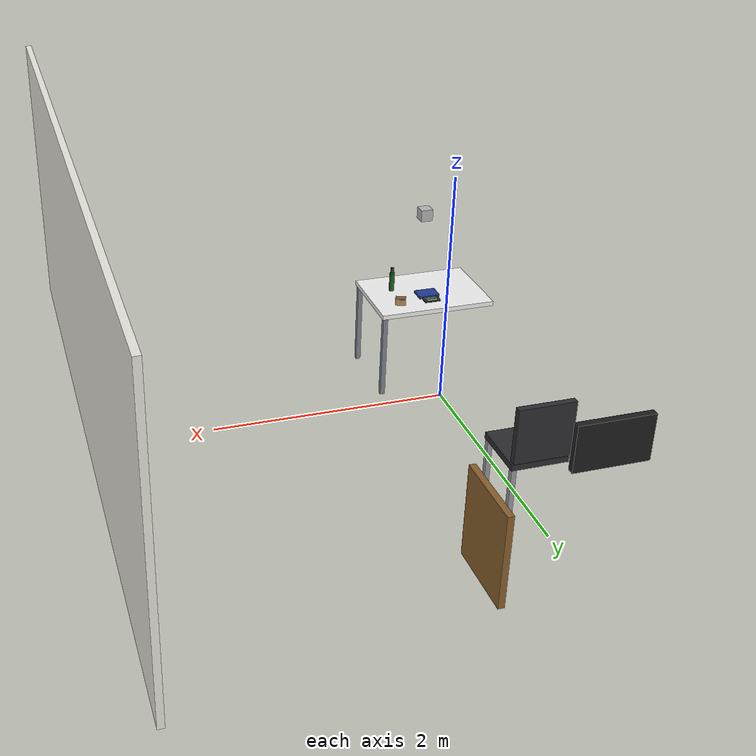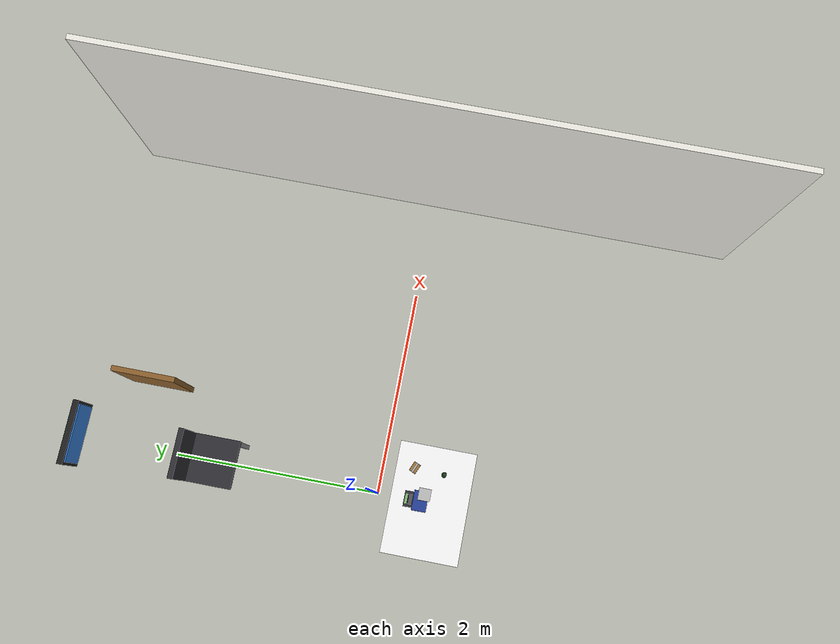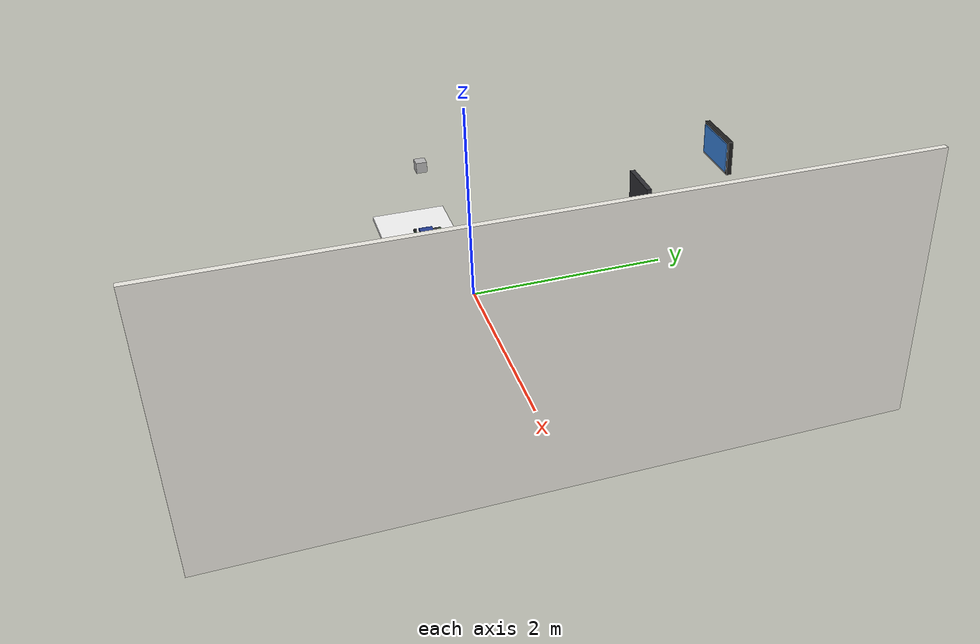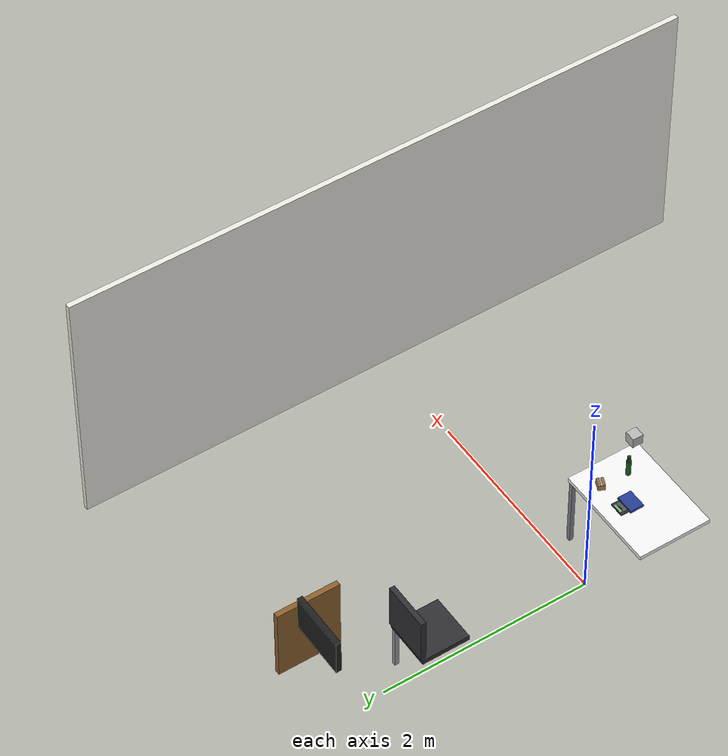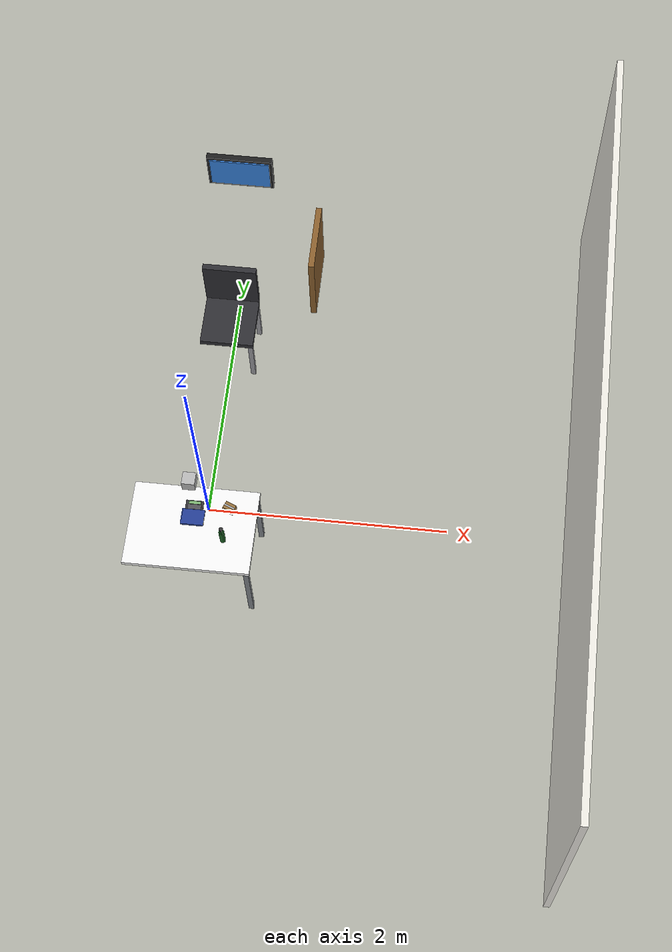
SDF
<sdf version="1.10">
 <world name="bps_room">
  <model name="wall_east">
   <static>true</static>
   <pose>3 0 1.25 0 0 0</pose>
   <link name="link">
    <collision name="collision">
     <geometry><box><size>0.050000000000000003 6 2.5</size></box></geometry>
    </collision>
    <visual name="visual">
     <geometry><box><size>0.050000000000000003 6 2.5</size></box></geometry>
     <material>
      <ambient>0.930000007 0.920000017 0.889999986 1</ambient>
      <diffuse>0.930000007 0.920000017 0.889999986 1</diffuse>
     </material>
    </visual>
    <inertial>
     <mass>1</mass>
     <inertia><ixx>1</ixx><ixy>0</ixy><ixz>0</ixz><iyy>1</iyy><iyz>0</iyz><izz>1</izz></inertia>
    </inertial>
   </link>
  </model>
  <model name="desk_leg_right">
   <static>true</static>
   <pose>0.65000000000000002 2.2999999999999998 0.375 0 0 0</pose>
   <link name="link">
    <collision name="collision">
     <geometry><box><size>0.050000000000000003 0.59999999999999998 0.75</size></box></geometry>
    </collision>
    <visual name="visual">
     <geometry><box><size>0.050000000000000003 0.59999999999999998 0.75</size></box></geometry>
     <material>
      <ambient>0.550000012 0.379999995 0.180000007 1</ambient>
      <diffuse>0.550000012 0.379999995 0.180000007 1</diffuse>
     </material>
    </visual>
    <inertial>
     <mass>1</mass>
     <inertia><ixx>1</ixx><ixy>0</ixy><ixz>0</ixz><iyy>1</iyy><iyz>0</iyz><izz>1</izz></inertia>
    </inertial>
   </link>
  </model>
  <model name="monitor_screen">
   <static>true</static>
   <pose>0 2.6000000000000001 1.2 0 0 0</pose>
   <link name="link">
    <collision name="collision">
     <geometry><box><size>0.55000000000000004 0.050000000000000003 0.34999999999999998</size></box></geometry>
    </collision>
    <visual name="visual">
     <geometry><box><size>0.55000000000000004 0.050000000000000003 0.34999999999999998</size></box></geometry>
     <material>
      <ambient>0.119999997 0.119999997 0.119999997 1</ambient>
      <diffuse>0.119999997 0.119999997 0.119999997 1</diffuse>
     </material>
    </visual>
    <inertial>
     <mass>1</mass>
     <inertia><ixx>1</ixx><ixy>0</ixy><ixz>0</ixz><iyy>1</iyy><iyz>0</iyz><izz>1</izz></inertia>
    </inertial>
   </link>
  </model>
  <model name="monitor_face">
   <static>true</static>
   <pose>0 2.5699999999999998 1.2 0 0 0</pose>
   <link name="link">
    <visual name="visual">
     <geometry><box><size>0.5 0.01 0.29999999999999999</size></box></geometry>
     <material>
      <ambient>0.219999999 0.519999981 0.879999995 1</ambient>
      <diffuse>0.219999999 0.519999981 0.879999995 1</diffuse>
      <emissive>0.100000001 0.25 0.449999988 1</emissive>
     </material>
    </visual>
    <inertial>
     <mass>1</mass>
     <inertia><ixx>1</ixx><ixy>0</ixy><ixz>0</ixz><iyy>1</iyy><iyz>0</iyz><izz>1</izz></inertia>
    </inertial>
   </link>
  </model>
  <model name="chair_seat">
   <static>true</static>
   <pose>0 1.55 0.47999999999999998 0 0 0</pose>
   <link name="link">
    <collision name="collision">
     <geometry><box><size>0.45000000000000001 0.45000000000000001 0.050000000000000003</size></box></geometry>
    </collision>
    <visual name="visual">
     <geometry><box><size>0.45000000000000001 0.45000000000000001 0.050000000000000003</size></box></geometry>
     <material>
      <ambient>0.180000007 0.180000007 0.200000003 1</ambient>
      <diffuse>0.180000007 0.180000007 0.200000003 1</diffuse>
     </material>
    </visual>
    <inertial>
     <mass>1</mass>
     <inertia><ixx>1</ixx><ixy>0</ixy><ixz>0</ixz><iyy>1</iyy><iyz>0</iyz><izz>1</izz></inertia>
    </inertial>
   </link>
  </model>
  <model name="chair_back">
   <static>true</static>
   <pose>0 1.77 0.75 0 0 0</pose>
   <link name="link">
    <collision name="collision">
     <geometry><box><size>0.45000000000000001 0.050000000000000003 0.45000000000000001</size></box></geometry>
    </collision>
    <visual name="visual">
     <geometry><box><size>0.45000000000000001 0.050000000000000003 0.45000000000000001</size></box></geometry>
     <material>
      <ambient>0.180000007 0.180000007 0.200000003 1</ambient>
      <diffuse>0.180000007 0.180000007 0.200000003 1</diffuse>
     </material>
    </visual>
    <inertial>
     <mass>1</mass>
     <inertia><ixx>1</ixx><ixy>0</ixy><ixz>0</ixz><iyy>1</iyy><iyz>0</iyz><izz>1</izz></inertia>
    </inertial>
   </link>
  </model>
  <model name="chair_leg_fr">
   <static>true</static>
   <pose>0.20000000000000001 1.3500000000000001 0.23999999999999999 0 0 0</pose>
   <link name="link">
    <collision name="collision">
     <geometry><box><size>0.040000000000000001 0.040000000000000001 0.47999999999999998</size></box></geometry>
    </collision>
    <visual name="visual">
     <geometry><box><size>0.040000000000000001 0.040000000000000001 0.47999999999999998</size></box></geometry>
     <material>
      <ambient>0.600000024 0.600000024 0.620000005 1</ambient>
      <diffuse>0.600000024 0.600000024 0.620000005 1</diffuse>
     </material>
    </visual>
    <inertial>
     <mass>1</mass>
     <inertia><ixx>1</ixx><ixy>0</ixy><ixz>0</ixz><iyy>1</iyy><iyz>0</iyz><izz>1</izz></inertia>
    </inertial>
   </link>
  </model>
  <model name="chair_leg_br">
   <static>true</static>
   <pose>0.20000000000000001 1.75 0.23999999999999999 0 0 0</pose>
   <link name="link">
    <collision name="collision">
     <geometry><box><size>0.040000000000000001 0.040000000000000001 0.47999999999999998</size></box></geometry>
    </collision>
    <visual name="visual">
     <geometry><box><size>0.040000000000000001 0.040000000000000001 0.47999999999999998</size></box></geometry>
     <material>
      <ambient>0.600000024 0.600000024 0.620000005 1</ambient>
      <diffuse>0.600000024 0.600000024 0.620000005 1</diffuse>
     </material>
    </visual>
    <inertial>
     <mass>1</mass>
     <inertia><ixx>1</ixx><ixy>0</ixy><ixz>0</ixz><iyy>1</iyy><iyz>0</iyz><izz>1</izz></inertia>
    </inertial>
   </link>
  </model>
  <model name="experiment_table">
   <static>true</static>
   <pose>0 -0.5 0.75 0 0 0</pose>
   <link name="link">
    <collision name="collision">
     <geometry><box><size>1 0.69999999999999996 0.040000000000000001</size></box></geometry>
    </collision>
    <visual name="visual">
     <geometry><box><size>1 0.69999999999999996 0.040000000000000001</size></box></geometry>
     <material>
      <ambient>0.959999979 0.959999979 0.959999979 1</ambient>
      <diffuse>0.959999979 0.959999979 0.959999979 1</diffuse>
     </material>
    </visual>
    <inertial>
     <mass>1</mass>
     <inertia><ixx>1</ixx><ixy>0</ixy><ixz>0</ixz><iyy>1</iyy><iyz>0</iyz><izz>1</izz></inertia>
    </inertial>
   </link>
  </model>
  <model name="table_leg_fr">
   <static>true</static>
   <pose>0.46999999999999997 -0.81999999999999995 0.375 0 0 0</pose>
   <link name="link">
    <collision name="collision">
     <geometry><box><size>0.040000000000000001 0.040000000000000001 0.75</size></box></geometry>
    </collision>
    <visual name="visual">
     <geometry><box><size>0.040000000000000001 0.040000000000000001 0.75</size></box></geometry>
     <material>
      <ambient>0.5 0.519999981 0.540000021 1</ambient>
      <diffuse>0.5 0.519999981 0.540000021 1</diffuse>
     </material>
    </visual>
    <inertial>
     <mass>1</mass>
     <inertia><ixx>1</ixx><ixy>0</ixy><ixz>0</ixz><iyy>1</iyy><iyz>0</iyz><izz>1</izz></inertia>
    </inertial>
   </link>
  </model>
  <model name="table_leg_br">
   <static>true</static>
   <pose>0.46999999999999997 -0.17999999999999999 0.375 0 0 0</pose>
   <link name="link">
    <collision name="collision">
     <geometry><box><size>0.040000000000000001 0.040000000000000001 0.75</size></box></geometry>
    </collision>
    <visual name="visual">
     <geometry><box><size>0.040000000000000001 0.040000000000000001 0.75</size></box></geometry>
     <material>
      <ambient>0.5 0.519999981 0.540000021 1</ambient>
      <diffuse>0.5 0.519999981 0.540000021 1</diffuse>
     </material>
    </visual>
    <inertial>
     <mass>1</mass>
     <inertia><ixx>1</ixx><ixy>0</ixy><ixz>0</ixz><iyy>1</iyy><iyz>0</iyz><izz>1</izz></inertia>
    </inertial>
   </link>
  </model>
  <model name="depth_camera">
   <static>true</static>
   <pose>4.163336342344337e-17 -0.5 1.5700000000000001 3.1415926535897931 1.5707926536057681 3.1415926535897931</pose>
   <link name="link">
    <pose>0.050000000000000003 0.050000000000000003 0.050000000000000003 0 0 0</pose>
    <inertial>
     <mass>0.10000000000000001</mass>
     <inertia>
      <ixx>0.00016666700000000001</ixx>
      <iyy>0.00016666700000000001</iyy>
      <izz>0.00016666700000000001</izz>
      <ixy>0</ixy>
      <ixz>0</ixz>
      <iyz>0</iyz>
     </inertia>
    </inertial>
    <collision name="collision">
     <geometry><box><size>0.10000000000000001 0.10000000000000001 0.10000000000000001</size></box></geometry>
    </collision>
    <visual name="visual">
     <geometry><box><size>0.10000000000000001 0.10000000000000001 0.10000000000000001</size></box></geometry>
    </visual>
    <sensor name="depth_camera1" type="depth_camera">
     <topic>depth_camera</topic>
     <update_rate>10</update_rate>
     <enable_metrics>false</enable_metrics>
     <camera name="__default__">
      <horizontal_fov>1.2</horizontal_fov>
      <image>
       <width>640</width>
       <height>480</height>
       <format>R_FLOAT32</format>
       <anti_aliasing>4</anti_aliasing>
      </image>
      <camera_info_topic>__default__</camera_info_topic>
      <triggered>false</triggered>
      <clip><near>0.10000000000000001</near><far>2</far></clip>
      <save enabled="false"><path>__default__</path></save>
      <visibility_mask>4294967295</visibility_mask>
      <noise><type>none</type><mean>0</mean><stddev>0</stddev></noise>
      <distortion><k1>0</k1><k2>0</k2><k3>0</k3><p1>0</p1><p2>0</p2><center>0.5 0.5</center></distortion>
      <lens>
       <type>gnomonical</type>
       <scale_to_hfov>true</scale_to_hfov>
       <cutoff_angle>1.5707963267948966</cutoff_angle>
       <env_texture_size>256</env_texture_size>
      </lens>
     </camera>
    </sensor>
    <sensor name="rgb_camera" type="camera">
     <topic>rgb_camera</topic>
     <update_rate>10</update_rate>
     <enable_metrics>false</enable_metrics>
     <camera name="__default__">
      <horizontal_fov>1.2</horizontal_fov>
      <image><width>640</width><height>480</height><format>RGB_INT8</format><anti_aliasing>4</anti_aliasing></image>
      <camera_info_topic>__default__</camera_info_topic>
      <triggered>false</triggered>
      <clip><near>0.10000000000000001</near><far>2</far></clip>
      <save enabled="false"><path>__default__</path></save>
      <visibility_mask>4294967295</visibility_mask>
      <noise><type>none</type><mean>0</mean><stddev>0</stddev></noise>
      <distortion><k1>0</k1><k2>0</k2><k3>0</k3><p1>0</p1><p2>0</p2><center>0.5 0.5</center></distortion>
      <lens>
       <type>gnomonical</type>
       <scale_to_hfov>true</scale_to_hfov>
       <cutoff_angle>1.5707963267948966</cutoff_angle>
       <env_texture_size>256</env_texture_size>
      </lens>
     </camera>
    </sensor>
    <sensor name="semantic_camera" type="segmentation_camera">
     <topic>semantic_camera</topic>
     <update_rate>10</update_rate>
     <enable_metrics>false</enable_metrics>
     <camera name="__default__">
      <horizontal_fov>1.0469999999999999</horizontal_fov>
      <image><width>640</width><height>480</height><format>RGB_INT8</format><anti_aliasing>4</anti_aliasing></image>
      <camera_info_topic>__default__</camera_info_topic>
      <triggered>false</triggered>
      <clip><near>0.10000000000000001</near><far>100</far></clip>
      <save enabled="false"><path>__default__</path></save>
      <visibility_mask>4294967295</visibility_mask>
      <noise><type>none</type><mean>0</mean><stddev>0</stddev></noise>
      <distortion><k1>0</k1><k2>0</k2><k3>0</k3><p1>0</p1><p2>0</p2><center>0.5 0.5</center></distortion>
      <lens>
       <type>gnomonical</type>
       <scale_to_hfov>true</scale_to_hfov>
       <cutoff_angle>1.5707963267948966</cutoff_angle>
       <env_texture_size>256</env_texture_size>
      </lens>
     </camera>
    </sensor>
   </link>
  </model>
  <model name="bottle">
   <static>true</static>
   <pose>0.26263850927352905 -0.58691704273223877 0.76999998092651367 0 0 0.11999999735386141</pose>
   <link name="link">
    <visual name="body">
     <pose>0 0 0.080000000000000002 0 0 0</pose>
     <geometry><cylinder><radius>0.021999999999999999</radius><length>0.16</length></cylinder></geometry>
     <material>
      <ambient>0.119999997 0.400000006 0.150000006 1</ambient>
      <diffuse>0.119999997 0.400000006 0.150000006 1</diffuse>
      <specular>0.200000003 0.449999988 0.219999999 1</specular>
     </material>
     <plugin name="gz::sim::systems::Label" filename="gz-sim-label-system"><label>2</label></plugin>
    </visual>
    <visual name="shoulder">
     <pose>0 0 0.16800000000000001 0 0 0</pose>
     <geometry><cylinder><radius>0.017999999999999999</radius><length>0.016</length></cylinder></geometry>
     <material>
      <ambient>0.119999997 0.400000006 0.150000006 1</ambient>
      <diffuse>0.119999997 0.400000006 0.150000006 1</diffuse>
     </material>
     <plugin name="gz::sim::systems::Label" filename="gz-sim-label-system"><label>2</label></plugin>
    </visual>
    <visual name="neck">
     <pose>0 0 0.188 0 0 0</pose>
     <geometry><cylinder><radius>0.012999999999999999</radius><length>0.024</length></cylinder></geometry>
     <material>
      <ambient>0.119999997 0.400000006 0.150000006 1</ambient>
      <diffuse>0.119999997 0.400000006 0.150000006 1</diffuse>
     </material>
     <plugin name="gz::sim::systems::Label" filename="gz-sim-label-system"><label>2</label></plugin>
    </visual>
    <visual name="cap">
     <pose>0 0 0.20699999999999999 0 0 0</pose>
     <geometry>
      <cylinder><radius>0.014999999999999999</radius><length>0.017999999999999999</length></cylinder>
     </geometry>
     <material>
      <ambient>0.200000003 0.200000003 0.200000003 1</ambient>
      <diffuse>0.200000003 0.200000003 0.200000003 1</diffuse>
     </material>
     <plugin name="gz::sim::systems::Label" filename="gz-sim-label-system"><label>2</label></plugin>
    </visual>
    <inertial>
     <mass>1</mass>
     <inertia><ixx>1</ixx><ixy>0</ixy><ixz>0</ixz><iyy>1</iyy><iyz>0</iyz><izz>1</izz></inertia>
    </inertial>
   </link>
  </model>
  <model name="book">
   <static>true</static>
   <pose>0 -0.41999999999999998 0.77000000000000002 0 0 0</pose>
   <link name="link">
    <visual name="cover">
     <pose>0 0 0.010999999999999999 0 0 0</pose>
     <geometry><box><size>0.17999999999999999 0.13 0.021999999999999999</size></box></geometry>
     <material>
      <ambient>0.140000001 0.239999995 0.579999983 1</ambient>
      <diffuse>0.140000001 0.239999995 0.579999983 1</diffuse>
      <specular>0.0500000007 0.0500000007 0.100000001 1</specular>
     </material>
     <plugin name="gz::sim::systems::Label" filename="gz-sim-label-system"><label>3</label></plugin>
    </visual>
    <visual name="pages">
     <pose>0.086999999999999994 0 0.010999999999999999 0 0 0</pose>
     <geometry><box><size>0.0060000000000000001 0.128 0.017999999999999999</size></box></geometry>
     <material>
      <ambient>0.959999979 0.930000007 0.850000024 1</ambient>
      <diffuse>0.959999979 0.930000007 0.850000024 1</diffuse>
     </material>
     <plugin name="gz::sim::systems::Label" filename="gz-sim-label-system"><label>3</label></plugin>
    </visual>
    <visual name="spine">
     <pose>-0.087999999999999995 0 0.010999999999999999 0 0 0</pose>
     <geometry><box><size>0.0050000000000000001 0.13 0.021999999999999999</size></box></geometry>
     <material>
      <ambient>0.200000003 0.319999993 0.680000007 1</ambient>
      <diffuse>0.200000003 0.319999993 0.680000007 1</diffuse>
     </material>
     <plugin name="gz::sim::systems::Label" filename="gz-sim-label-system"><label>3</label></plugin>
    </visual>
    <inertial>
     <mass>1</mass>
     <inertia><ixx>1</ixx><ixy>0</ixy><ixz>0</ixz><iyy>1</iyy><iyz>0</iyz><izz>1</izz></inertia>
    </inertial>
   </link>
  </model>
  <model name="calculator">
   <static>true</static>
   <pose>0 -0.315 0.77000000000000002 0 0 0</pose>
   <link name="link">
    <visual name="body">
     <pose>0 0 0.0060000000000000001 0 0 0</pose>
     <geometry><box><size>0.14000000000000001 0.080000000000000002 0.012</size></box></geometry>
     <material>
      <ambient>0.200000003 0.200000003 0.219999999 1</ambient>
      <diffuse>0.200000003 0.200000003 0.219999999 1</diffuse>
      <specular>0.100000001 0.100000001 0.119999997 1</specular>
     </material>
     <plugin name="gz::sim::systems::Label" filename="gz-sim-label-system"><label>4</label></plugin>
    </visual>
    <visual name="screen">
     <pose>0 0.021999999999999999 0.0135 0 0 0</pose>
     <geometry><box><size>0.091999999999999998 0.025999999999999999 0.0030000000000000001</size></box></geometry>
     <material>
      <ambient>0.479999989 0.699999988 0.439999998 1</ambient>
      <diffuse>0.479999989 0.699999988 0.439999998 1</diffuse>
      <emissive>0.119999997 0.219999999 0.100000001 1</emissive>
     </material>
     <plugin name="gz::sim::systems::Label" filename="gz-sim-label-system"><label>4</label></plugin>
    </visual>
    <visual name="keypad">
     <pose>0 -0.014 0.012999999999999999 0 0 0</pose>
     <geometry><box><size>0.108 0.042000000000000003 0.002</size></box></geometry>
     <material>
      <ambient>0.319999993 0.319999993 0.340000004 1</ambient>
      <diffuse>0.319999993 0.319999993 0.340000004 1</diffuse>
     </material>
     <plugin name="gz::sim::systems::Label" filename="gz-sim-label-system"><label>4</label></plugin>
    </visual>
    <visual name="solar_strip">
     <pose>0 0.0050000000000000001 0.012999999999999999 0 0 0</pose>
     <geometry><box><size>0.059999999999999998 0.0060000000000000001 0.002</size></box></geometry>
     <material>
      <ambient>0.100000001 0.100000001 0.119999997 1</ambient>
      <diffuse>0.100000001 0.100000001 0.119999997 1</diffuse>
     </material>
     <plugin name="gz::sim::systems::Label" filename="gz-sim-label-system"><label>4</label></plugin>
    </visual>
    <inertial>
     <mass>1</mass>
     <inertia><ixx>1</ixx><ixy>0</ixy><ixz>0</ixz><iyy>1</iyy><iyz>0</iyz><izz>1</izz></inertia>
    </inertial>
   </link>
  </model>
  <model name="small_box">
   <static>true</static>
   <pose>0.28000000000000003 -0.32000000000000001 0.77000000000000002 0 0 -0.39999999999999991</pose>
   <link name="link">
    <visual name="body">
     <pose>0 0 0.0275 0 0 0</pose>
     <geometry><box><size>0.089999999999999997 0.065000000000000002 0.055</size></box></geometry>
     <material>
      <ambient>0.779999971 0.620000005 0.379999995 1</ambient>
      <diffuse>0.779999971 0.620000005 0.379999995 1</diffuse>
      <specular>0.0799999982 0.0599999987 0.0399999991 1</specular>
     </material>
     <plugin name="gz::sim::systems::Label" filename="gz-sim-label-system"><label>7</label></plugin>
    </visual>
    <visual name="lid_seam">
     <pose>0 0 0.0562 0 0 0</pose>
     <geometry><box><size>0.087999999999999995 0.063 0.002</size></box></geometry>
     <material>
      <ambient>0.579999983 0.439999998 0.239999995 1</ambient>
      <diffuse>0.579999983 0.439999998 0.239999995 1</diffuse>
     </material>
     <plugin name="gz::sim::systems::Label" filename="gz-sim-label-system"><label>7</label></plugin>
    </visual>
    <visual name="tape">
     <pose>0 0 0.058000000000000003 0 0 0</pose>
     <geometry><box><size>0.089999999999999997 0.012 0.001</size></box></geometry>
     <material>
      <ambient>0.800000012 0.819999993 0.850000024 1</ambient>
      <diffuse>0.800000012 0.819999993 0.850000024 1</diffuse>
      <specular>0.400000006 0.419999987 0.439999998 1</specular>
     </material>
     <plugin name="gz::sim::systems::Label" filename="gz-sim-label-system"><label>7</label></plugin>
    </visual>
    <inertial>
     <mass>1</mass>
     <inertia><ixx>1</ixx><ixy>0</ixy><ixz>0</ixz><iyy>1</iyy><iyz>0</iyz><izz>1</izz></inertia>
    </inertial>
   </link>
  </model>
 </world>
</sdf>
